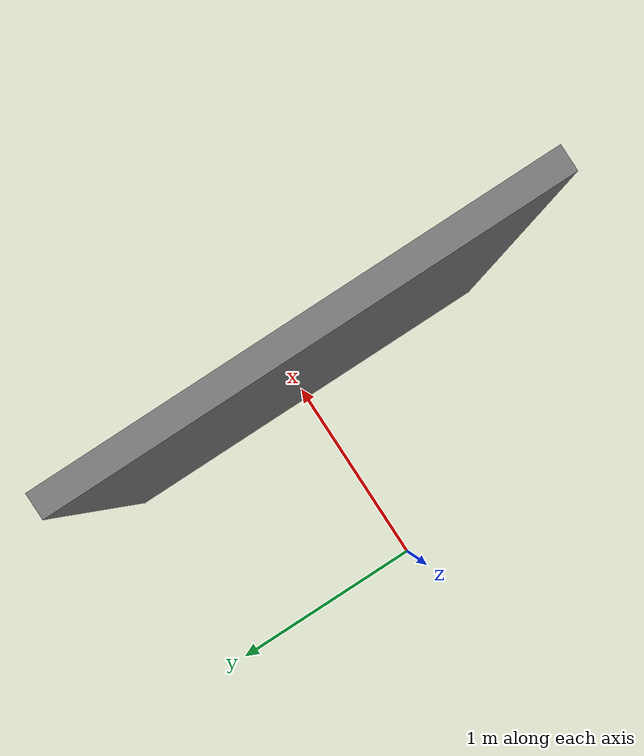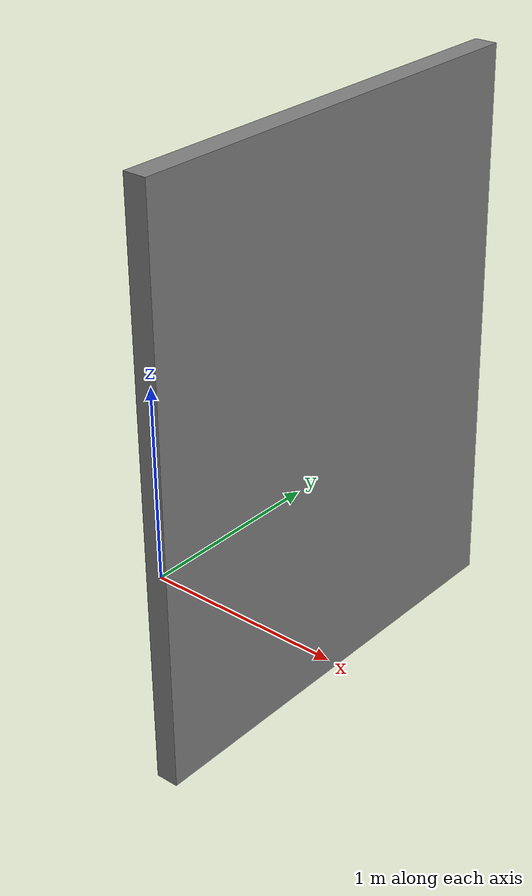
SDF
<?xml version="1.0" ?>
<sdf version="1.6">
  <model name="wall">
    <static>true</static>
    <link name="wall_link">
      <pose>1 0 1.25 0 0 0</pose> <!-- x=1m forward, y=0, z=1.25m height/2 -->
      <collision name="collision">
        <geometry>
          <box>
            <size>0.1 2 2.5</size> <!-- thickness 0.1m, width 2m, height 2.5m -->
          </box>
        </geometry>
      </collision>
      <visual name="visual">
        <geometry>
          <box>
            <size>0.1 2 2.5</size>
          </box>
        </geometry>
        <material>
          <ambient>0.5 0.5 0.5 1</ambient>
          <diffuse>0.5 0.5 0.5 1</diffuse>
        </material>
      </visual>
    </link>
  </model>
</sdf>
